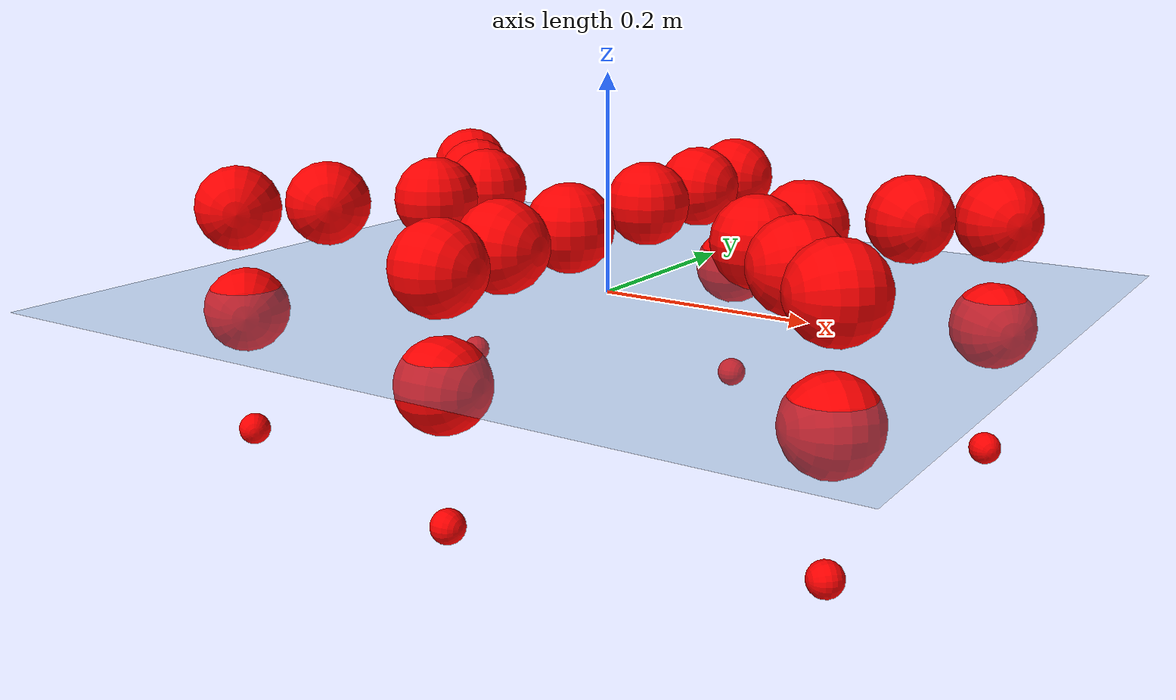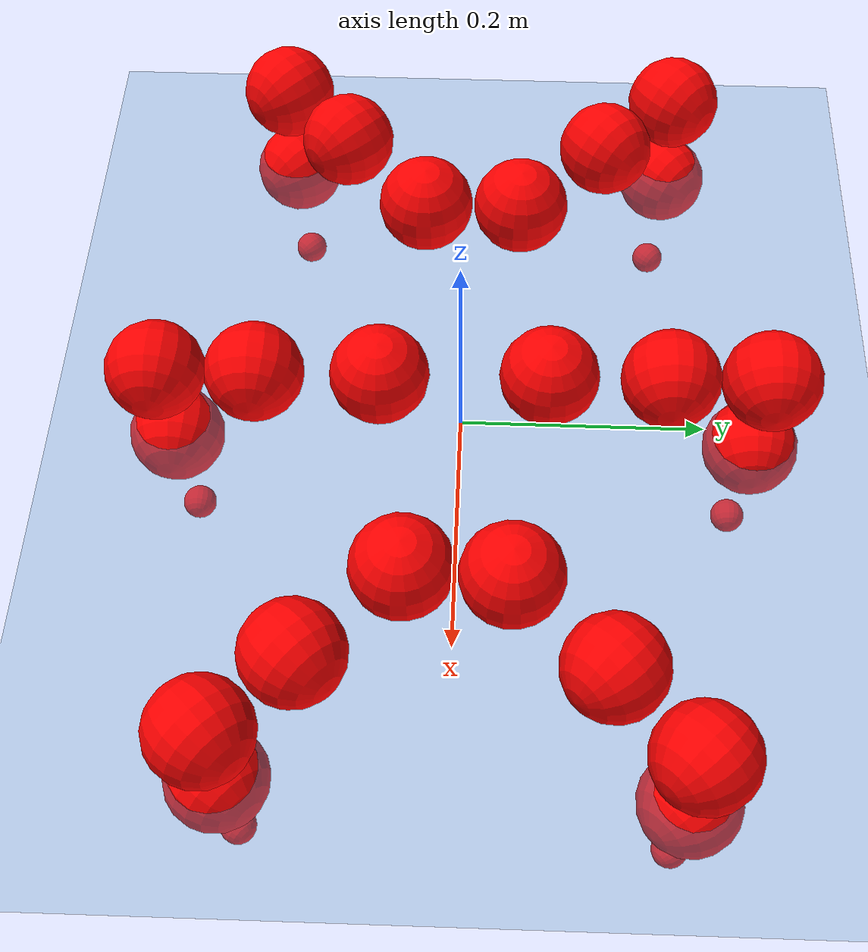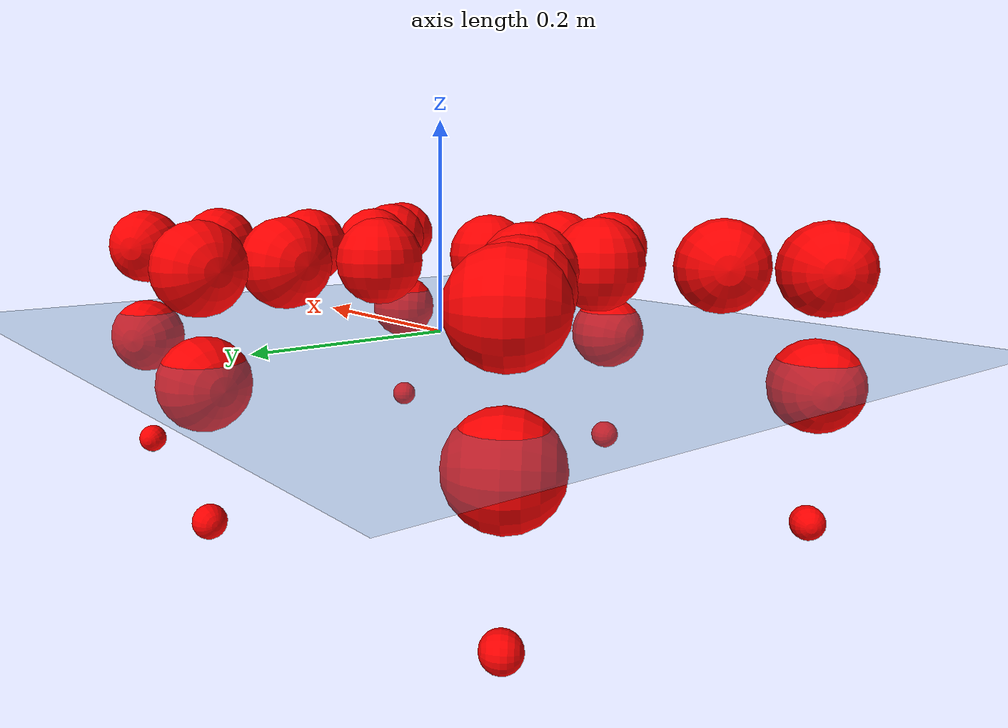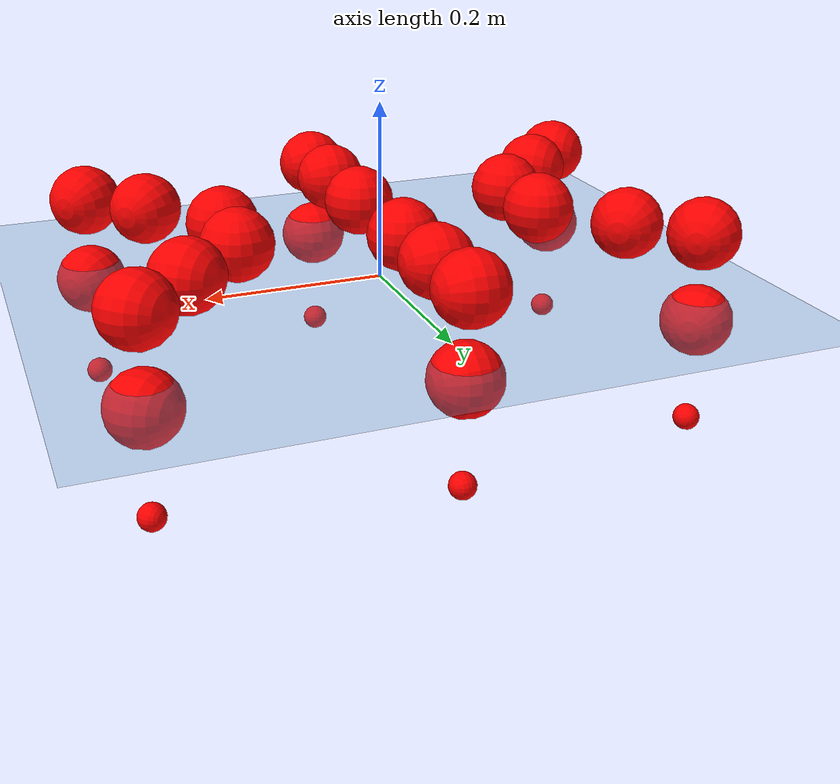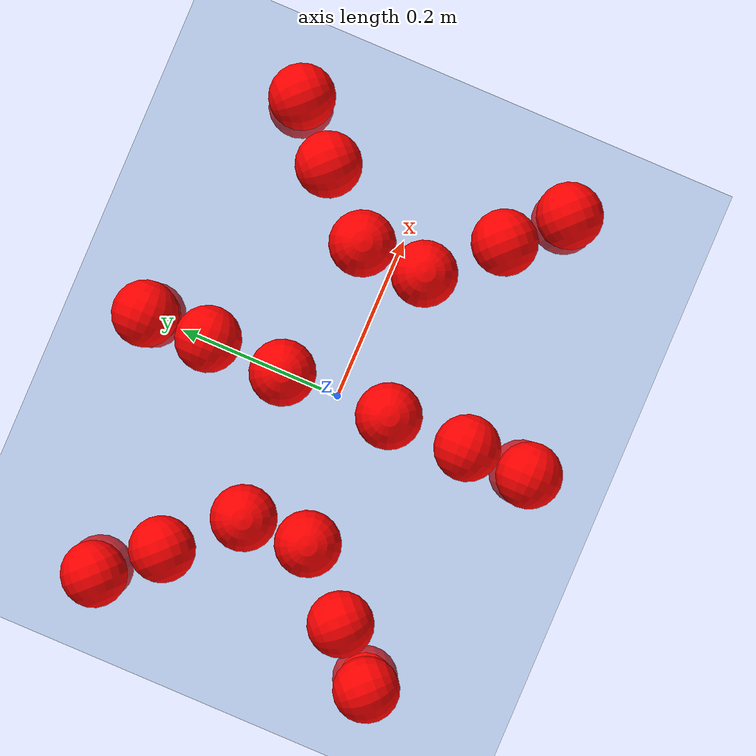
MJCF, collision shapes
<mujoco model="Golem">
  <compiler angle="radian" assetdir="assets" balanceinertia="true" inertiafromgeom="false"/>

  <option timestep="0.005" density="1.2" viscosity="2e-05"/>

  <size nkey="1"/>

  <visual>
    <quality shadowsize="8192"/>
    <map shadowclip="0.5"/>
  </visual>

  <default>
    <default class="/">
      <joint armature="0.01" damping="0.01" frictionloss="0.01"/>
      <geom contype="0" conaffinity="0" group="1" solref="-1000 -80"/>
      <site size="0.01 0.005 0.005" group="5"/>
      <general forcelimited="true" biastype="affine" gainprm="25" biasprm="0 -25 -0.5"/>
      <default class="visual">
        <geom type="mesh" group="2"/>
      </default>
      <default class="collision">
        <geom group="3"/>
      </default>
      <default class="foot">
        <geom size="0.01 0 0" condim="6" group="4" priority="1" solimp="0.015 1 0.01"/>
      </default>
      <default class="reward_collision_sphere">
        <geom group="5" rgba="1 0 0 1"/>
      </default>
    </default>
  </default>

  <asset>
    <texture type="skybox" colorspace="auto" name="//unnamed_texture_0" builtin="gradient" rgb1="0.95 0.95 0.95" rgb2="0.95 0.95 0.95" width="100" height="600"/>
    <texture type="2d" colorspace="auto" name="texplane" builtin="checker" rgb1="0.345 0.575 0.748" rgb2="0.345 0.575 0.748" markrgb="1 1 1" width="512" height="512"/>
    <material name="MatPlane" class="/" texture="texplane" texuniform="true" texrepeat="2 2" specular="0.9"/>
    <mesh name="body" class="/" file="body.stl" scale="0.001 0.001 0.001"/>
    <mesh name="coxa" class="/" file="coxa.stl" scale="0.001 0.001 0.001"/>
    <mesh name="femur" class="/" file="femur.stl" scale="0.001 0.001 0.001"/>
    <mesh name="tibia" class="/" file="tibia.stl" scale="0.001 0.001 0.001"/>
    <mesh name="tarsus" class="/" file="tarsus.stl" scale="0.001 0.001 0.001"/>
  </asset>

  <worldbody>
    <geom name="floor" class="/" size="100 100 0.125" type="plane" group="0" material="MatPlane"/>
    <light name="toplight_shadow" class="/" pos="0 0 5" dir="0.0990148 0.0990148 -0.990148" type="directional" ambient="0.04 0.04 0.04" diffuse="0.55 0.55 0.55" specular="0.12 0.12 0.12"/>
    <light name="toplight_fill" class="/" pos="0 0 5" dir="0.0990148 0.0990148 -0.990148" type="directional" castshadow="false" ambient="0.04 0.04 0.04" diffuse="0.3 0.3 0.3" specular="0.08 0.08 0.08"/>
    <body name="trunk" pos="0.000550006 0.00274528 0.0019698" quat="1 3.31528e-05 -1.67407e-05 0.000249181">
      <inertial pos="-0.00050762 0.000428011 -0.00449413" quat="0.999995 0.00107171 -0.00225236 0.00170904" mass="3.82084" diaginertia="0.0162975 0.00262644 0.0164767"/>
      <joint name="//unnamed_joint_0" type="free"/>
      <geom name="//unnamed_geom_1" class="/" pos="0 0 0.0706928" quat="1 0 0 0" type="mesh" rgba="0.9 0.9 0.9 1" mesh="body"/>
      <site name="imu" class="/" pos="0.147846 -0.0111414 0.114969" size="0.0098834"/>
      <camera name="track" class="/" pos="0 -1.5193 0" quat="0.707107 0.707107 0 0" mode="trackcom"/>
      <camera name="ego_camera" class="/" pos="0.143103 0 0.110458" quat="-0.5 -0.5 0.5 0.5"/>
      <body name="coxa_RR" pos="-0.195124 -0.0609929 0.0738174" quat="0.382722 0.000555772 -0.00116139 -0.923863">
        <inertial pos="0.000111845 -0.00255014 0.00297069" quat="0.99997 -0.00705125 -0.00310369 0.000217985" mass="0.198246" diaginertia="0.015946 0.00249746 0.016442"/>
        <joint name="coxa_joint_RR" class="/" pos="0 0 0" axis="0.00122604 -0.00345102 -0.999993" range="-3.08671 3.13616" armature="0.00999213" damping="0.00559713" frictionloss="0.010413"/>
        <geom name="//unnamed_geom_2" class="/" type="mesh" rgba="0.2 0.2 0.2 1" mesh="coxa"/>
        <geom name="//unnamed_geom_3" class="reward_collision_sphere" size="0.0395336" pos="-0.0330238 0 0"/>
        <body name="femur_RR" pos="0.0676875 0.000254107 -0.000240187" quat="0.500856 -0.499791 0.500196 0.499156">
          <inertial pos="-0.00273311 -0.00094481 0.000623684" quat="1 0.000539095 -0.00051858 0.000145659" mass="0.197294" diaginertia="0.0165424 0.00260492 0.0168944"/>
          <joint name="femur_joint_RR" class="/" pos="0 0 0" axis="-0.000890026 -0.00125374 -0.999999" stiffness="0.00728946" range="-3.18526 3.17647" armature="0.00862391" damping="0.00200475" frictionloss="0.00978548"/>
          <geom name="//unnamed_geom_4" class="/" type="mesh" rgba="0.9 0.9 0.9 1" mesh="femur"/>
          <geom name="//unnamed_geom_5" class="reward_collision_sphere" size="0.0395336"/>
          <body name="tibia_RR" pos="0.00153444 -0.0815644 -0.000641486" quat="5.68886e-05 1 0.000134445 1.66155e-05">
            <inertial pos="0.00124066 0.00101295 -0.000744576" quat="0.999963 0.00498616 0.00250596 0.00657784" mass="0.190451" diaginertia="0.0163814 0.00266573 0.0172868"/>
            <joint name="tibia_joint_RR" class="/" pos="0 0 0" axis="0.00142768 0.0127074 0.999918" range="-3.16512 3.0942" armature="0.0104365" damping="0.0197537" frictionloss="0.0093522"/>
            <geom name="//unnamed_geom_6" class="/" type="mesh" rgba="0.2 0.2 0.2 1" mesh="tibia"/>
            <geom name="//unnamed_geom_7" class="reward_collision_sphere" size="0.0395336"/>
            <body name="tarsus_RR" pos="0.0964681 -0.00225739 -0.000697087" quat="1 -0.000344598 -0.000324634 4.17307e-06">
              <inertial pos="0.069985 0.00265526 -0.00280371" quat="0.49933 0.505449 0.49821 0.496969" mass="0.20231" diaginertia="0.016293 0.00270442 0.016966"/>
              <joint name="tarsus_joint_RR" class="/" pos="0 0 0" axis="0.00257089 -0.00166067 0.999995" range="-3.08657 3.1393" armature="0.0100016" damping="0.0444111" frictionloss="0.0106423"/>
              <geom name="//unnamed_geom_8" class="/" type="mesh" rgba="0.9 0.9 0.9 1" mesh="tarsus"/>
              <geom name="foot_1" class="foot" size="0.0100808" pos="0.123289 0 0" quat="0 -0.707107 0 0.707107"/>
              <geom name="//unnamed_geom_10" class="reward_collision_sphere" size="0.0395336"/>
              <geom name="//unnamed_geom_11" class="reward_collision_sphere" size="0.0148251" pos="0.118335 0 0"/>
              <site name="foot_1" class="foot" pos="0.123289 0 0" quat="0 -0.707107 0 0.707107" size="0.0098834"/>
            </body>
          </body>
        </body>
      </body>
      <body name="coxa_RM" pos="0.00131642 -0.0993408 0.0690782" quat="0.707096 4.07427e-05 3.15823e-06 -0.707118">
        <inertial pos="0.000895934 0.00145775 0.000111471" quat="0.999999 0.000901369 -0.000897635 -0.000593888" mass="0.18639" diaginertia="0.0160375 0.00250892 0.0163103"/>
        <joint name="coxa_joint_RM" class="/" pos="0 0 0" axis="-0.000741995 0.00197703 -0.999998" range="-3.12189 3.14476" armature="0.00976467" damping="0.0100723" frictionloss="0.0087033"/>
        <geom name="//unnamed_geom_12" class="/" type="mesh" rgba="0.2 0.2 0.2 1" mesh="coxa"/>
        <geom name="//unnamed_geom_13" class="reward_collision_sphere" size="0.0395336" pos="-0.0330238 0 0"/>
        <body name="femur_RM" pos="0.0652945 0.00152533 0.00134249" quat="0.499759 -0.499645 0.500474 0.500122">
          <inertial pos="-0.000416617 -0.00205118 0.00263061" quat="0.999994 -0.00188669 -0.00110543 0.0027098" mass="0.196634" diaginertia="0.0157806 0.00255482 0.0166051"/>
          <joint name="femur_joint_RM" class="/" pos="0 0 0" axis="-0.00402795 -0.00118506 -0.999991" range="-3.1525 3.10807" armature="0.010355" damping="0" frictionloss="0.00980714"/>
          <geom name="//unnamed_geom_14" class="/" type="mesh" rgba="0.9 0.9 0.9 1" mesh="femur"/>
          <geom name="//unnamed_geom_15" class="reward_collision_sphere" size="0.0395336"/>
          <body name="tibia_RM" pos="0.00291422 -0.078637 -0.00121798" quat="-1.46864e-05 1 8.51231e-05 0.000214233">
            <inertial pos="-0.00258053 -0.00269168 0.000285013" quat="0.99992 0.0055591 -0.00996265 0.00542782" mass="0.195128" diaginertia="0.0161801 0.00253997 0.0159688"/>
            <joint name="tibia_joint_RM" class="/" pos="0 0 0" axis="-0.000886331 -0.00401848 0.999992" range="-3.14205 3.16543" armature="0.0106423" damping="0.0235562" frictionloss="0.0108171"/>
            <geom name="//unnamed_geom_16" class="/" type="mesh" rgba="0.2 0.2 0.2 1" mesh="tibia"/>
            <geom name="//unnamed_geom_17" class="reward_collision_sphere" size="0.0395336"/>
            <body name="tarsus_RM" pos="0.0943841 -0.00179238 0.000118672" quat="1 2.68121e-05 -0.000221505 -6.89741e-05">
              <inertial pos="0.066335 -0.000751976 0.00119327" quat="0.502962 0.499522 0.500301 0.497197" mass="0.198304" diaginertia="0.0167612 0.00263564 0.0169753"/>
              <joint name="tarsus_joint_RM" class="/" pos="0 0 0" axis="-0.0003218 -0.00260519 0.999997" range="-3.14069 3.13122" armature="0.00839192" damping="0.00236749" frictionloss="0.00941581"/>
              <geom name="//unnamed_geom_18" class="/" type="mesh" rgba="0.9 0.9 0.9 1" mesh="tarsus"/>
              <geom name="foot_2" class="foot" size="0.00899505" pos="0.123289 0 0" quat="0 -0.707107 0 0.707107"/>
              <geom name="//unnamed_geom_20" class="reward_collision_sphere" size="0.0395336"/>
              <geom name="//unnamed_geom_21" class="reward_collision_sphere" size="0.0148251" pos="0.118335 0 0"/>
              <site name="foot_2" class="foot" pos="0.123289 0 0" quat="0 -0.707107 0 0.707107" size="0.0098834"/>
            </body>
          </body>
        </body>
      </body>
      <body name="coxa_RF" pos="0.192833 -0.0628259 0.0710304" quat="0.923923 -0.000109137 7.04598e-05 -0.382578">
        <inertial pos="0.00290462 -0.000237886 -0.000273352" quat="0.999986 0.00288688 0.0043165 0.000445575" mass="0.191364" diaginertia="0.016662 0.00249568 0.0158427"/>
        <joint name="coxa_joint_RF" class="/" pos="0 0 0" axis="-0.00519073 0.00573316 -0.99997" range="-3.18026 3.15861" armature="0.00916145" damping="0.0116409" frictionloss="0.010244"/>
        <geom name="//unnamed_geom_22" class="/" type="mesh" rgba="0.2 0.2 0.2 1" mesh="coxa"/>
        <geom name="//unnamed_geom_23" class="reward_collision_sphere" size="0.0395336" pos="-0.0330238 0 0"/>
        <body name="femur_RF" pos="0.0669958 -0.00147184 0.00196023" quat="0.500408 -0.500328 0.499355 0.499908">
          <inertial pos="0.000834879 0.000890375 -0.00252929" quat="0.999999 0.000640715 0.00159358 0.000221991" mass="0.189635" diaginertia="0.0161749 0.0026387 0.0164631"/>
          <joint name="femur_joint_RF" class="/" pos="0 0 0" axis="0.000415159 0.000551461 -1" range="-3.08464 3.13078" armature="0.0110774" damping="0" frictionloss="0.010063"/>
          <geom name="//unnamed_geom_24" class="/" type="mesh" rgba="0.9 0.9 0.9 1" mesh="femur"/>
          <geom name="//unnamed_geom_25" class="reward_collision_sphere" size="0.0395336"/>
          <body name="tibia_RF" pos="0.000710057 -0.0816361 0.000531562" quat="1.08278e-05 1 -7.60607e-05 6.35894e-05">
            <inertial pos="0.000154664 0.00246639 0.000283164" quat="0.999999 -0.000438984 -0.00138741 -0.000520325" mass="0.192791" diaginertia="0.0166777 0.00247528 0.0170304"/>
            <joint name="tibia_joint_RF" class="/" pos="0 0 0" axis="0.00494144 -8.85733e-05 0.999988" range="-3.15707 3.15604" armature="0.0102737" damping="0.00456924" frictionloss="0.00855067"/>
            <geom name="//unnamed_geom_26" class="/" type="mesh" rgba="0.2 0.2 0.2 1" mesh="tibia"/>
            <geom name="//unnamed_geom_27" class="reward_collision_sphere" size="0.0395336"/>
            <body name="tarsus_RF" pos="0.0966643 0.0016073 0.00122597" quat="0.999999 0.000508092 -0.00119491 -0.000412554">
              <inertial pos="0.0641309 -0.00265741 0.000701746" quat="0.495501 0.494265 0.509365 0.500728" mass="0.187243" diaginertia="0.0167698 0.00246074 0.0164376"/>
              <joint name="tarsus_joint_RF" class="/" pos="0 0 0" axis="0.00741966 -0.0107644 0.999915" stiffness="0.00349945" range="-3.08712 3.15613" armature="0.0108828" damping="0.00187541" frictionloss="0.00978984"/>
              <geom name="//unnamed_geom_28" class="/" type="mesh" rgba="0.9 0.9 0.9 1" mesh="tarsus"/>
              <geom name="foot_3" class="foot" size="0.00983754" pos="0.123289 0 0" quat="0 -0.707107 0 0.707107"/>
              <geom name="//unnamed_geom_30" class="reward_collision_sphere" size="0.0395336"/>
              <geom name="//unnamed_geom_31" class="reward_collision_sphere" size="0.0148251" pos="0.118335 0 0"/>
              <site name="foot_3" class="foot" pos="0.123289 0 0" quat="0 -0.707107 0 0.707107" size="0.0098834"/>
            </body>
          </body>
        </body>
      </body>
      <body name="coxa_LR" pos="-0.196621 0.0658948 0.0723955" quat="0.382789 -0.000347896 -2.64291e-05 0.923836">
        <inertial pos="0.000364095 -0.00278185 0.000519338" quat="0.99991 -0.0120815 -0.00338083 -0.0047761" mass="0.18615" diaginertia="0.0154329 0.00253039 0.015991"/>
        <joint name="coxa_joint_LR" class="/" pos="0 0 0" axis="-0.0100128 -0.00336033 -0.999944" range="-3.16032 3.19125" armature="0.00853574" damping="0.00677718" frictionloss="0.0104157"/>
        <geom name="//unnamed_geom_32" class="/" type="mesh" rgba="0.2 0.2 0.2 1" mesh="coxa"/>
        <geom name="//unnamed_geom_33" class="reward_collision_sphere" size="0.0395336" pos="-0.0330238 0 0"/>
        <body name="femur_LR" pos="0.0686856 -0.00174837 -0.00349143" quat="0.499849 -0.500824 0.499057 0.500268">
          <inertial pos="0.000137418 -0.000112007 -0.0010347" quat="0.999912 0.00368607 0.00696543 0.010658" mass="0.190941" diaginertia="0.01632 0.0025679 0.017147"/>
          <joint name="femur_joint_LR" class="/" pos="0 0 0" axis="-0.00776887 -0.00290952 0.999966" range="-3.09173 3.08505" armature="0.0107279" damping="0" frictionloss="0.0103605"/>
          <geom name="//unnamed_geom_34" class="/" type="mesh" rgba="0.9 0.9 0.9 1" mesh="femur"/>
          <geom name="//unnamed_geom_35" class="reward_collision_sphere" size="0.0395336"/>
          <body name="tibia_LR" pos="-0.000720015 -0.0840617 -0.00327691" quat="-0.000105157 1 0.00072194 -0.000377044">
            <inertial pos="0.00109715 -0.00224072 0.0026047" quat="0.999953 -0.00786895 -0.00368861 0.00432959" mass="0.194496" diaginertia="0.0167166 0.00257803 0.0164626"/>
            <joint name="tibia_joint_LR" class="/" pos="0 0 0" axis="-0.00239004 0.00146739 -0.999996" stiffness="2.57611e-05" range="-3.19426 3.17397" armature="0.00902474" damping="0" frictionloss="0.0109168"/>
            <geom name="//unnamed_geom_36" class="/" type="mesh" rgba="0.2 0.2 0.2 1" mesh="tibia"/>
            <geom name="//unnamed_geom_37" class="reward_collision_sphere" size="0.0395336"/>
            <body name="tarsus_LR" pos="0.0993376 0.000670728 0.000787764" quat="0.999999 0.000422859 -0.000718836 -0.00108408">
              <inertial pos="0.0696311 0.000951224 -5.75834e-05" quat="0.491274 0.503896 0.49916 0.505548" mass="0.199502" diaginertia="0.016285 0.00257023 0.0166179"/>
              <joint name="tarsus_joint_LR" class="/" pos="0 0 0" axis="0.000818058 -0.00671575 -0.999977" range="-3.19469 3.1473" armature="0.00997809" damping="0.0261585" frictionloss="0.00852314"/>
              <geom name="//unnamed_geom_38" class="/" type="mesh" rgba="0.9 0.9 0.9 1" mesh="tarsus"/>
              <geom name="foot_4" class="foot" size="0.010125" pos="0.123289 0 0" quat="0.707107 0 -0.707107 0"/>
              <geom name="//unnamed_geom_40" class="reward_collision_sphere" size="0.0395336"/>
              <geom name="//unnamed_geom_41" class="reward_collision_sphere" size="0.0148251" pos="0.118335 0 0"/>
              <site name="foot_4" class="foot" pos="0.123289 0 0" quat="0.707107 0 -0.707107 0" size="0.0098834"/>
            </body>
          </body>
        </body>
      </body>
      <body name="coxa_LM" pos="-0.000555803 0.100101 0.0701454" quat="0.706649 0.000114105 0.000109188 0.707564">
        <inertial pos="-0.00231563 0.000194881 -0.00228621" quat="1 -0.000604949 -0.000584807 8.71957e-05" mass="0.188904" diaginertia="0.0154496 0.0024222 0.0168313"/>
        <joint name="coxa_joint_LM" class="/" pos="0 0 0" axis="0.000510473 -0.00531667 -0.999986" range="-3.1385 3.14569" armature="0.0112245" damping="0.00223926" frictionloss="0.00879385"/>
        <geom name="//unnamed_geom_42" class="/" type="mesh" rgba="0.2 0.2 0.2 1" mesh="coxa"/>
        <geom name="//unnamed_geom_43" class="reward_collision_sphere" size="0.0395336" pos="-0.0330238 0 0"/>
        <body name="femur_LM" pos="0.0615559 -0.00240428 0.00317991" quat="0.499424 -0.500045 0.500387 0.500144">
          <inertial pos="0.00281472 0.00114872 0.00264758" quat="0.999996 -0.00033245 0.00153489 0.00228667" mass="0.193572" diaginertia="0.0164073 0.00254162 0.0163377"/>
          <joint name="femur_joint_LM" class="/" pos="0 0 0" axis="0.00140121 1.21635e-05 0.999999" range="-3.16029 3.08617" armature="0.0104606" damping="0" frictionloss="0.0110323"/>
          <geom name="//unnamed_geom_44" class="/" type="mesh" rgba="0.9 0.9 0.9 1" mesh="femur"/>
          <geom name="//unnamed_geom_45" class="reward_collision_sphere" size="0.0395336"/>
          <body name="tibia_LM" pos="0.000315293 -0.0788565 0.0012935" quat="-0.000118961 1 0.000158598 -0.000295791">
            <inertial pos="-0.00165224 -0.002629 0.0024703" quat="0.99993 0.00287806 -0.000500267 0.0114842" mass="0.188809" diaginertia="0.0161577 0.00249578 0.0159121"/>
            <joint name="tibia_joint_LM" class="/" pos="0 0 0" axis="0.0121978 0.00232518 -0.999923" range="-3.14706 3.08375" armature="0.00995628" damping="0" frictionloss="0.00993032"/>
            <geom name="//unnamed_geom_46" class="/" type="mesh" rgba="0.2 0.2 0.2 1" mesh="tibia"/>
            <geom name="//unnamed_geom_47" class="reward_collision_sphere" size="0.0395336"/>
            <body name="tarsus_LM" pos="0.0950997 -0.00184773 0.00221414" quat="1 8.14771e-06 6.29496e-06 7.37168e-05">
              <inertial pos="0.0641092 0.000959928 -0.00277352" quat="0.509955 0.496483 0.492432 0.50096" mass="0.197821" diaginertia="0.0162206 0.002421 0.0157877"/>
              <joint name="tarsus_joint_LM" class="/" pos="0 0 0" axis="-0.0110161 0.00565804 -0.999923" range="-3.13661 3.08334" armature="0.00953009" damping="0.00884859" frictionloss="0.00993884"/>
              <geom name="//unnamed_geom_48" class="/" type="mesh" rgba="0.9 0.9 0.9 1" mesh="tarsus"/>
              <geom name="foot_5" class="foot" size="0.0101792" pos="0.123289 0 0" quat="0.707107 0 -0.707107 0"/>
              <geom name="//unnamed_geom_50" class="reward_collision_sphere" size="0.0395336"/>
              <geom name="//unnamed_geom_51" class="reward_collision_sphere" size="0.0148251" pos="0.118335 0 0"/>
              <site name="foot_5" class="foot" pos="0.123289 0 0" quat="0.707107 0 -0.707107 0" size="0.0098834"/>
            </body>
          </body>
        </body>
      </body>
      <body name="coxa_LF" pos="0.197044 0.0637277 0.0721759" quat="0.924 -0.000745836 -0.00101857 0.382389">
        <inertial pos="-8.28496e-05 0.000793261 0.000679549" quat="0.999929 -0.00255747 -0.00780871 -0.00862173" mass="0.196725" diaginertia="0.0157107 0.00257994 0.015716"/>
        <joint name="coxa_joint_LF" class="/" pos="0 0 0" axis="0.00709899 -0.00342538 -0.999969" range="-3.14001 3.13531" armature="0.00963354" damping="0.00527796" frictionloss="0.00936658"/>
        <geom name="//unnamed_geom_52" class="/" type="mesh" rgba="0.2 0.2 0.2 1" mesh="coxa"/>
        <geom name="//unnamed_geom_53" class="reward_collision_sphere" size="0.0395336" pos="-0.0330238 0 0"/>
        <body name="femur_LF" pos="0.0665715 0.00206211 0.000492999" quat="0.50042 -0.500032 0.499893 0.499655">
          <inertial pos="0.00279535 -0.000403982 0.00261089" quat="1 7.13041e-05 -0.000521861 -0.000739276" mass="0.188599" diaginertia="0.0155496 0.00252655 0.0158639"/>
          <joint name="femur_joint_LF" class="/" pos="0 0 0" axis="0.00291809 0.00718793 0.99997" range="-3.13763 3.18552" armature="0.0111921" damping="0.00207323" frictionloss="0.00987828"/>
          <geom name="//unnamed_geom_54" class="/" type="mesh" rgba="0.9 0.9 0.9 1" mesh="femur"/>
          <geom name="//unnamed_geom_55" class="reward_collision_sphere" size="0.0395336"/>
          <body name="tibia_LF" pos="0.00323739 -0.0846817 -0.000893247" quat="-0.000877552 0.999999 0.000490297 -0.000643177">
            <inertial pos="0.000813337 -0.000330809 0.000313555" quat="0.999996 -0.00186537 -0.000817405 0.00185095" mass="0.193143" diaginertia="0.016128 0.002537 0.0163724"/>
            <joint name="tibia_joint_LF" class="/" pos="0 0 0" axis="-0.00929502 -0.00721599 -0.999931" range="-3.14965 3.18666" armature="0.00852331" damping="0.00826544" frictionloss="0.00980189"/>
            <geom name="//unnamed_geom_56" class="/" type="mesh" rgba="0.2 0.2 0.2 1" mesh="tibia"/>
            <geom name="//unnamed_geom_57" class="reward_collision_sphere" size="0.0395336"/>
            <body name="tarsus_LF" pos="0.0988844 0.00179489 -0.00188699" quat="1 2.45574e-05 0.000355019 -0.000121589">
              <inertial pos="0.0637995 0.000912403 -0.000844151" quat="0.499426 0.499445 0.500092 0.501036" mass="0.188924" diaginertia="0.0160768 0.00250319 0.016663"/>
              <joint name="tarsus_joint_LF" class="/" pos="0 0 0" axis="0.00314301 -0.00849994 -0.999959" stiffness="0.0233651" range="-3.19309 3.19165" armature="0.00998545" damping="0" frictionloss="0.00999015"/>
              <geom name="//unnamed_geom_58" class="/" type="mesh" rgba="0.9 0.9 0.9 1" mesh="tarsus"/>
              <geom name="foot_6" class="foot" size="0.0103144" pos="0.123289 0 0" quat="0.707107 0 -0.707107 0"/>
              <geom name="//unnamed_geom_60" class="reward_collision_sphere" size="0.0395336"/>
              <geom name="//unnamed_geom_61" class="reward_collision_sphere" size="0.0148251" pos="0.118335 0 0"/>
              <site name="foot_6" class="foot" pos="0.123289 0 0" quat="0.707107 0 -0.707107 0" size="0.0098834"/>
            </body>
          </body>
        </body>
      </body>
    </body>
  </worldbody>

  <contact>
    <pair class="/" geom1="floor" geom2="foot_1" name="//unnamed_contact_0"/>
    <pair class="/" geom1="floor" geom2="foot_2" name="//unnamed_contact_1"/>
    <pair class="/" geom1="floor" geom2="foot_3" name="//unnamed_contact_2"/>
    <pair class="/" geom1="floor" geom2="foot_4" name="//unnamed_contact_3"/>
    <pair class="/" geom1="floor" geom2="foot_5" name="//unnamed_contact_4"/>
    <pair class="/" geom1="floor" geom2="foot_6" name="//unnamed_contact_5"/>
  </contact>

  <actuator>
    <general name="coxa_joint_RR" class="/" joint="coxa_joint_RR" forcerange="-7.43151 7.43151" gainprm="23.6716" biasprm="0 -23.6716 -0.544642"/>
    <general name="femur_joint_RR" class="/" joint="femur_joint_RR" forcerange="-6.82486 6.82486" gainprm="23.6716" biasprm="0 -23.6716 -0.544642"/>
    <general name="tibia_joint_RR" class="/" joint="tibia_joint_RR" forcerange="-6.5165 6.5165" gainprm="23.6716" biasprm="0 -23.6716 -0.544642"/>
    <general name="tarsus_joint_RR" class="/" joint="tarsus_joint_RR" forcerange="-6.62482 6.62482" gainprm="23.6716" biasprm="0 -23.6716 -0.544642"/>
    <general name="coxa_joint_RM" class="/" joint="coxa_joint_RM" forcerange="-7.18271 7.18271" gainprm="23.6716" biasprm="0 -23.6716 -0.544642"/>
    <general name="femur_joint_RM" class="/" joint="femur_joint_RM" forcerange="-7.21318 7.21318" gainprm="23.6716" biasprm="0 -23.6716 -0.544642"/>
    <general name="tibia_joint_RM" class="/" joint="tibia_joint_RM" forcerange="-6.57261 6.57261" gainprm="23.6716" biasprm="0 -23.6716 -0.544642"/>
    <general name="tarsus_joint_RM" class="/" joint="tarsus_joint_RM" forcerange="-7.29221 7.29221" gainprm="23.6716" biasprm="0 -23.6716 -0.544642"/>
    <general name="coxa_joint_RF" class="/" joint="coxa_joint_RF" forcerange="-7.25466 7.25466" gainprm="23.6716" biasprm="0 -23.6716 -0.544642"/>
    <general name="femur_joint_RF" class="/" joint="femur_joint_RF" forcerange="-7.8566 7.8566" gainprm="23.6716" biasprm="0 -23.6716 -0.544642"/>
    <general name="tibia_joint_RF" class="/" joint="tibia_joint_RF" forcerange="-7.60478 7.60478" gainprm="23.6716" biasprm="0 -23.6716 -0.544642"/>
    <general name="tarsus_joint_RF" class="/" joint="tarsus_joint_RF" forcerange="-7.86262 7.86262" gainprm="23.6716" biasprm="0 -23.6716 -0.544642"/>
    <general name="coxa_joint_LR" class="/" joint="coxa_joint_LR" forcerange="-6.47454 6.47454" gainprm="23.6716" biasprm="0 -23.6716 -0.544642"/>
    <general name="femur_joint_LR" class="/" joint="femur_joint_LR" forcerange="-7.33128 7.33128" gainprm="23.6716" biasprm="0 -23.6716 -0.544642"/>
    <general name="tibia_joint_LR" class="/" joint="tibia_joint_LR" forcerange="-7.73962 7.73962" gainprm="23.6716" biasprm="0 -23.6716 -0.544642"/>
    <general name="tarsus_joint_LR" class="/" joint="tarsus_joint_LR" forcerange="-7.12602 7.12602" gainprm="23.6716" biasprm="0 -23.6716 -0.544642"/>
    <general name="coxa_joint_LM" class="/" joint="coxa_joint_LM" forcerange="-7.55544 7.55544" gainprm="23.6716" biasprm="0 -23.6716 -0.544642"/>
    <general name="femur_joint_LM" class="/" joint="femur_joint_LM" forcerange="-7.22838 7.22838" gainprm="23.6716" biasprm="0 -23.6716 -0.544642"/>
    <general name="tibia_joint_LM" class="/" joint="tibia_joint_LM" forcerange="-6.48862 6.48862" gainprm="23.6716" biasprm="0 -23.6716 -0.544642"/>
    <general name="tarsus_joint_LM" class="/" joint="tarsus_joint_LM" forcerange="-6.55357 6.55357" gainprm="23.6716" biasprm="0 -23.6716 -0.544642"/>
    <general name="coxa_joint_LF" class="/" joint="coxa_joint_LF" forcerange="-7.26654 7.26654" gainprm="23.6716" biasprm="0 -23.6716 -0.544642"/>
    <general name="femur_joint_LF" class="/" joint="femur_joint_LF" forcerange="-6.46835 6.46835" gainprm="23.6716" biasprm="0 -23.6716 -0.544642"/>
    <general name="tibia_joint_LF" class="/" joint="tibia_joint_LF" forcerange="-7.36144 7.36144" gainprm="23.6716" biasprm="0 -23.6716 -0.544642"/>
    <general name="tarsus_joint_LF" class="/" joint="tarsus_joint_LF" forcerange="-7.24246 7.24246" gainprm="23.6716" biasprm="0 -23.6716 -0.544642"/>
  </actuator>

  <sensor>
    <gyro site="imu" name="imu_angular_velocity"/>
    <velocimeter site="imu" name="imu_linear_velocity"/>
    <framelinvel objtype="site" objname="foot_1" name="foot_1_global_linear_velocity"/>
    <framelinvel objtype="site" objname="foot_2" name="foot_2_global_linear_velocity"/>
    <framelinvel objtype="site" objname="foot_3" name="foot_3_global_linear_velocity"/>
    <framelinvel objtype="site" objname="foot_4" name="foot_4_global_linear_velocity"/>
    <framelinvel objtype="site" objname="foot_5" name="foot_5_global_linear_velocity"/>
    <framelinvel objtype="site" objname="foot_6" name="foot_6_global_linear_velocity"/>
  </sensor>

  <keyframe>
    <key name="home" qpos="0 0 0.1457 1 0 0 0 0 0 0 0 0 0 0 0 0 0 0 0 0 0 0 0 0 0 0 0 0 0 0 0"/>
  </keyframe>
</mujoco>
